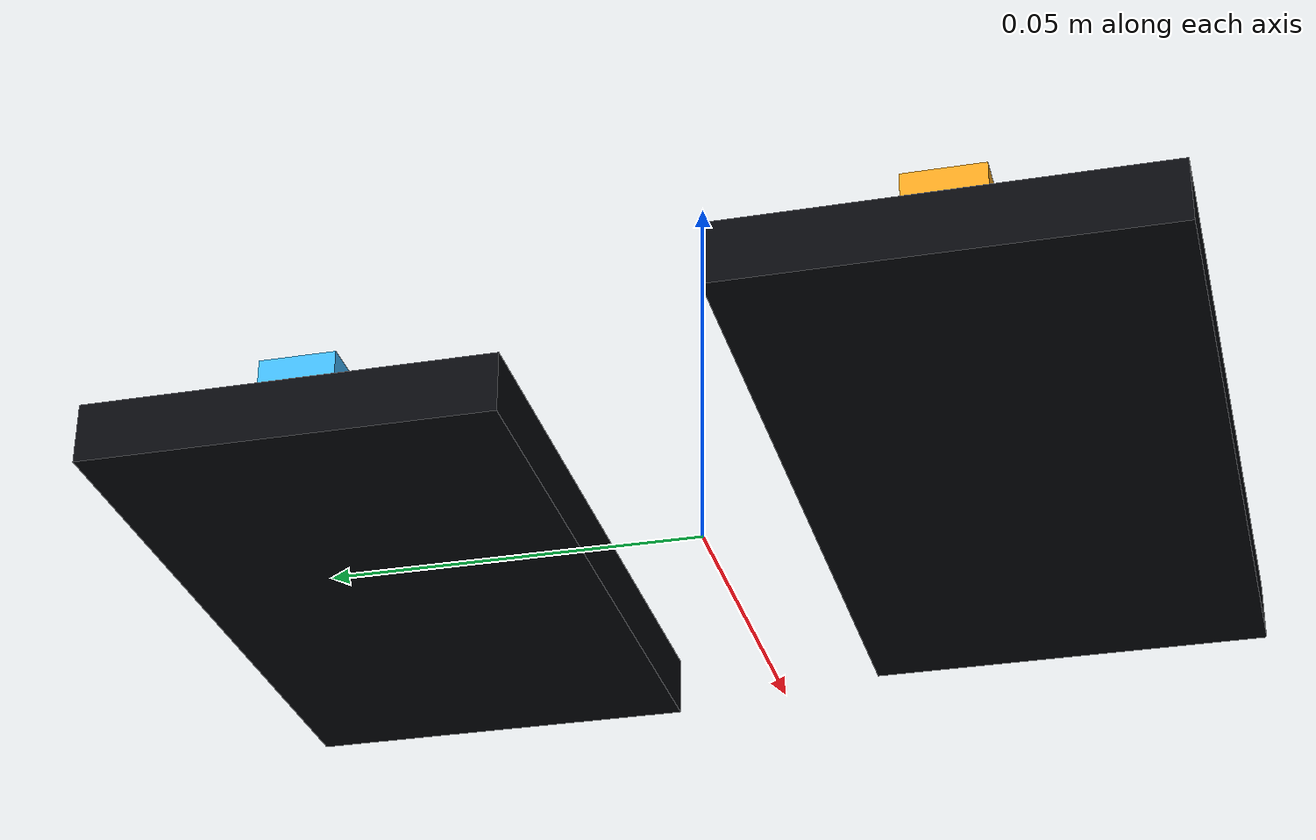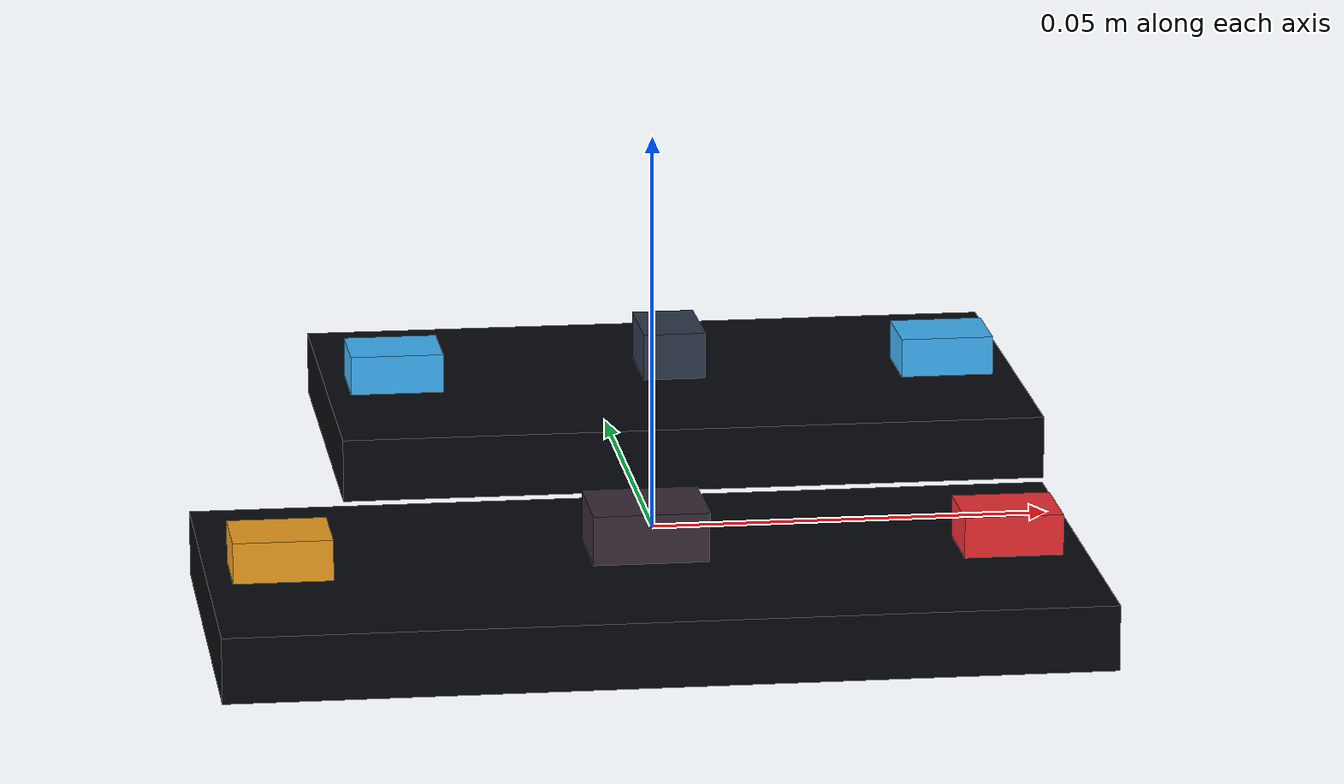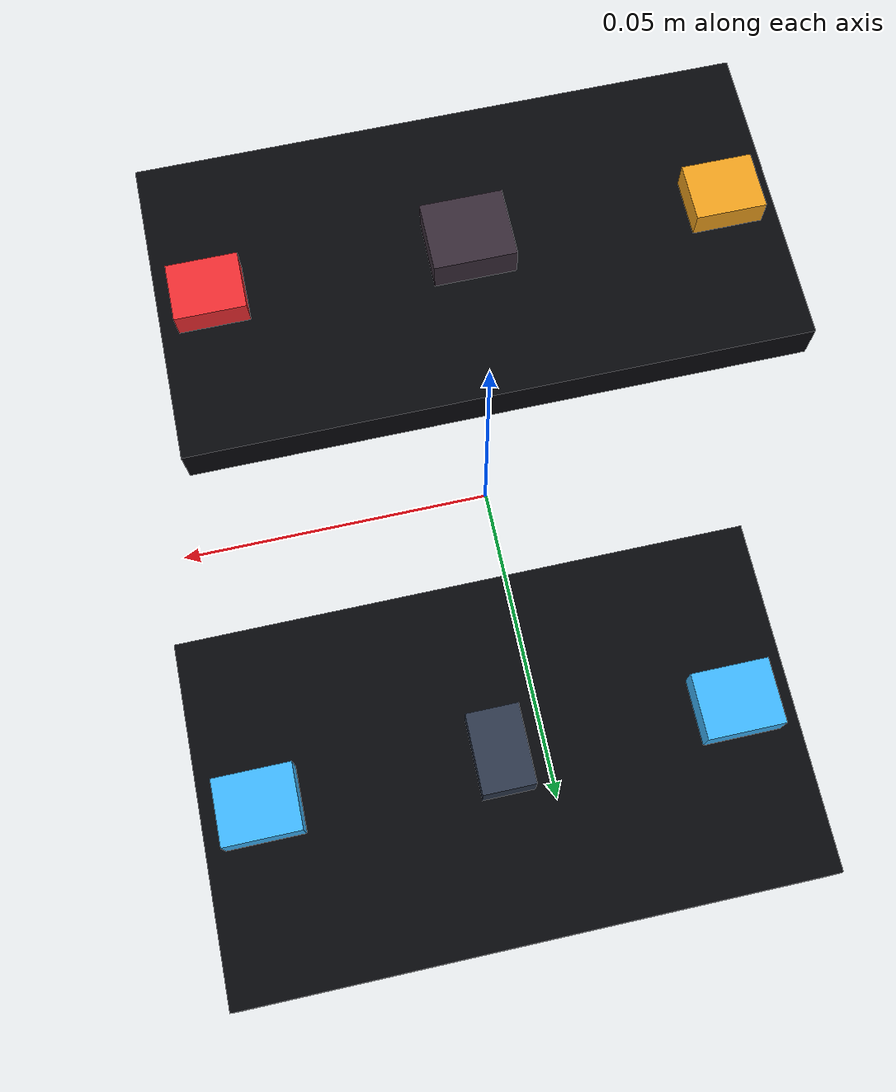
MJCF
<mujoco model="microduck_nes_controller">
    <compiler angle="radian" autolimits="true"/>

    <!-- Simulation-first controller with four independent vertical keys. -->
    <default>
        <default class="nes_button_joint">
            <joint type="slide" axis="0 0 1" limited="true" range="-0.002 0"
                   stiffness="1200" damping="2.0" springref="0"
                   armature="0.00002"/>
        </default>
        <default class="nes_button">
            <geom type="box" size="0.006 0.005 0.003"
                  friction="1.6 0.02 0.002" condim="3" priority="2"
                  solref="0.005 1" solimp="0.98 0.999 0.0005"/>
        </default>
    </default>

    <worldbody>
      <body name="controller_root">
        <geom name="dpad_housing" type="box" pos="0.0075 0.043 0.004"
              size="0.045 0.027 0.004" rgba="0.025 0.030 0.045 1"
              contype="0" conaffinity="0"/>
        <geom name="ab_housing" type="box" pos="-0.006 -0.041 0.004"
              size="0.053 0.027 0.004" rgba="0.025 0.030 0.045 1"
              contype="0" conaffinity="0"/>

        <!-- Fixed frames double as per-foot anchor references. -->
        <body name="dpad_platform" pos="0.0075 0.043 0.007">
            <geom name="dpad_neutral_support" type="box" pos="0 0 0.005"
                  size="0.004 0.006 0.003" rgba="0.18 0.22 0.30 1"
                  friction="1.6 0.02 0.002" condim="3" priority="2"/>
            <body name="dpad_left_key" pos="-0.036 0 0">
                <joint name="passive_dpad_left" class="nes_button_joint"/>
                <inertial pos="0 0 0" mass="0.010" diaginertia="8e-7 8e-7 8e-7"/>
                <geom name="dpad_left_surface" class="nes_button" pos="0 0 0.003"
                      rgba="0.25 0.72 1 1"/>
            </body>
            <body name="dpad_right_key" pos="0.036 0 0">
                <joint name="passive_dpad_right" class="nes_button_joint"/>
                <inertial pos="0 0 0" mass="0.010" diaginertia="8e-7 8e-7 8e-7"/>
                <geom name="dpad_right_surface" class="nes_button" pos="0 0 0.003"
                      rgba="0.25 0.72 1 1"/>
            </body>
        </body>

        <body name="ab_platform" pos="-0.006 -0.041 0.007">
            <geom name="ab_neutral_support" type="box" pos="0 0 0.005"
                  size="0.007 0.006 0.003" rgba="0.22 0.17 0.22 1"
                  friction="1.6 0.02 0.002" condim="3" priority="2"/>
            <body name="button_a_key" pos="0.044 0 0">
                <joint name="passive_button_a" class="nes_button_joint"/>
                <inertial pos="0 0 0" mass="0.010" diaginertia="8e-7 8e-7 8e-7"/>
                <geom name="button_a_surface" class="nes_button" pos="0 0 0.003"
                      rgba="0.95 0.18 0.20 1"/>
            </body>
            <body name="button_b_key" pos="-0.044 0 0">
                <joint name="passive_button_b" class="nes_button_joint"/>
                <inertial pos="0 0 0" mass="0.010" diaginertia="8e-7 8e-7 8e-7"/>
                <geom name="button_b_surface" class="nes_button" pos="0 0 0.003"
                      rgba="0.95 0.64 0.12 1"/>
            </body>
        </body>
      </body>
    </worldbody>
</mujoco>
